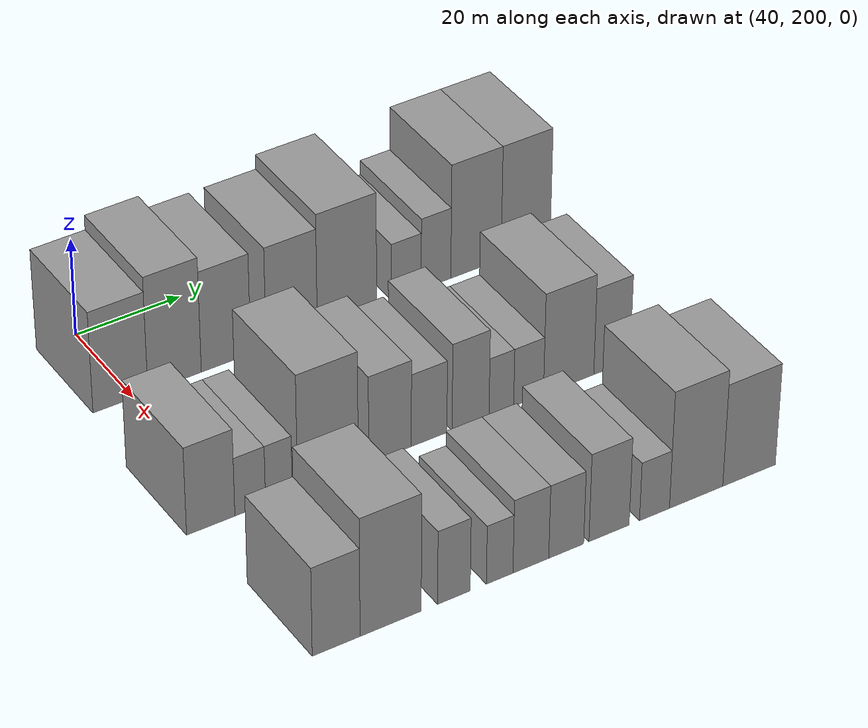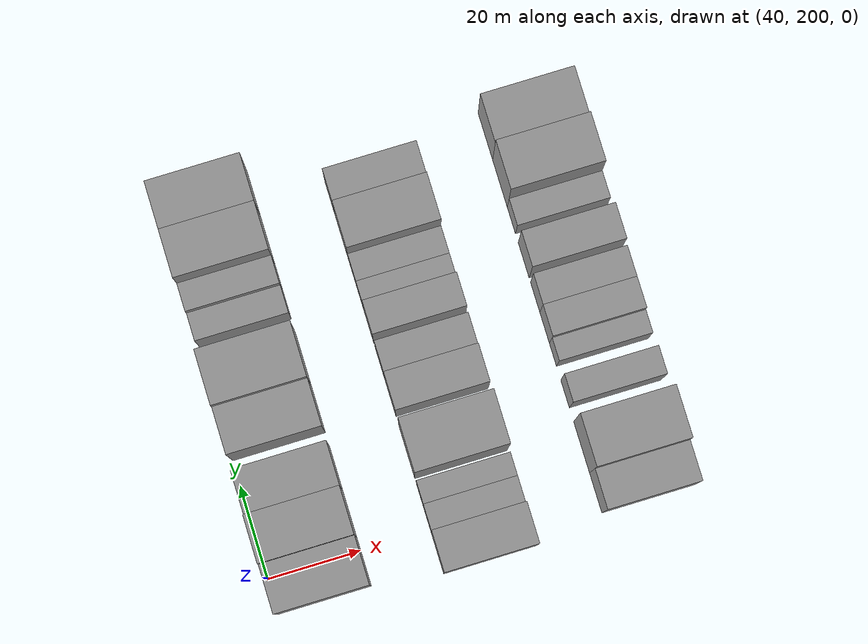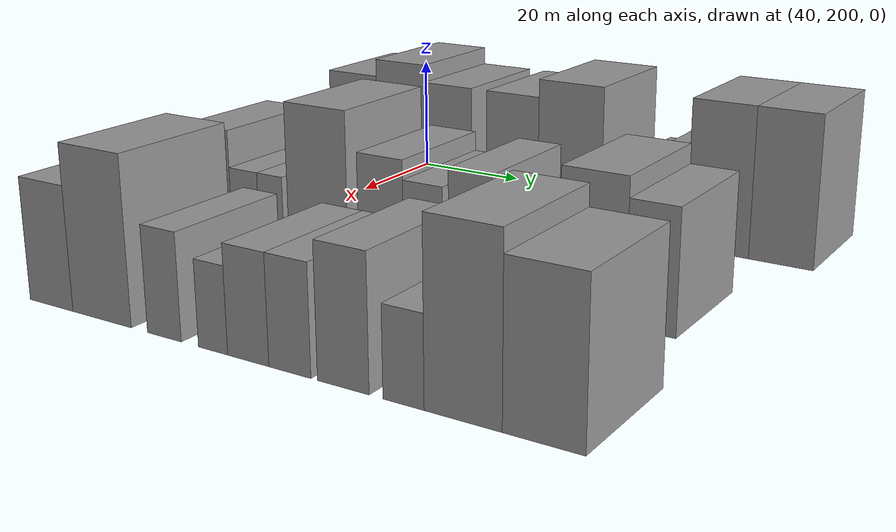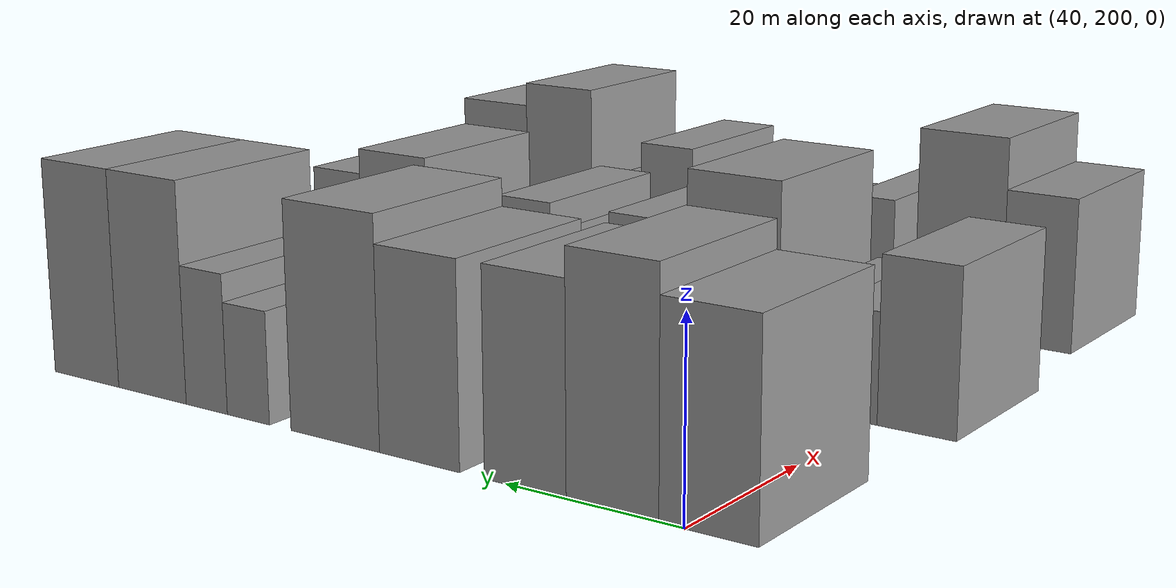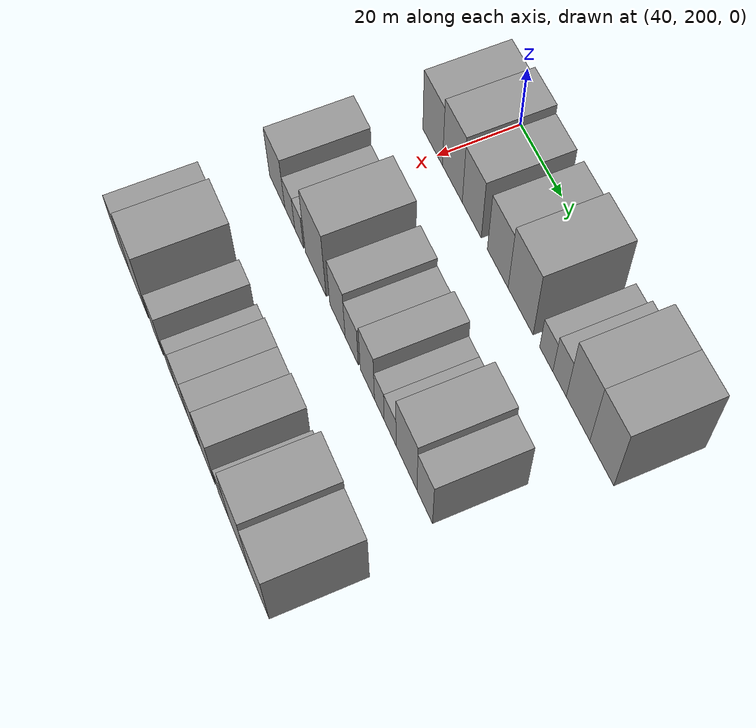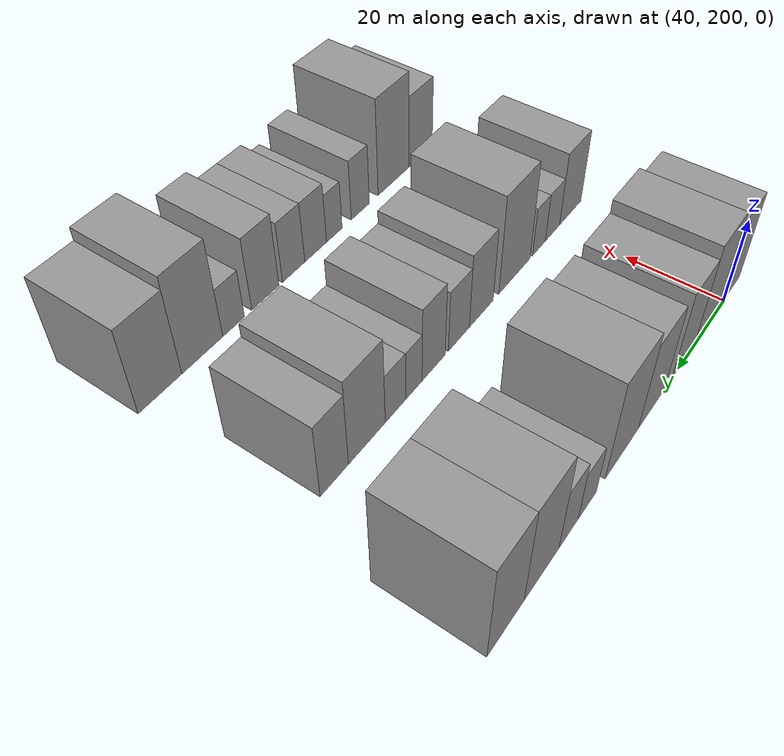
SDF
<sdf version="1.6">
 <world name="default">
  <model name="building_60">
   <static>1</static>
   <pose>50.0000 197.5814 0 0.000000 0.000000 0.000000</pose>
   <link name="link">
    <pose>0 0 10.50 0 0 0</pose>
    <collision name="collision"><geometry><box><size>20.0000 10.3683 21.0000</size></box></geometry></collision>
    <visual name="visual">
     <cast_shadows>0</cast_shadows>
     <geometry><box><size>20.0000 10.3683 21.0000</size></box></geometry>
     <material>
      <script>
       <uri>model://grey_wall/materials/scripts</uri>
       <uri>model://grey_wall/materials/textures</uri>
       <name>vrc/grey_wall</name>
      </script>
     </material>
    </visual>
   </link>
  </model>
  <model name="building_61">
   <static>1</static>
   <pose>50.0000 207.8681 0 0.000000 0.000000 0.000000</pose>
   <link name="link">
    <pose>0 0 12.00 0 0 0</pose>
    <collision name="collision"><geometry><box><size>20.0000 10.2053 24.0000</size></box></geometry></collision>
    <visual name="visual">
     <cast_shadows>0</cast_shadows>
     <geometry><box><size>20.0000 10.2053 24.0000</size></box></geometry>
     <material>
      <script>
       <uri>model://grey_wall/materials/scripts</uri>
       <uri>model://grey_wall/materials/textures</uri>
       <name>vrc/grey_wall</name>
      </script>
     </material>
    </visual>
   </link>
  </model>
  <model name="building_62">
   <static>1</static>
   <pose>50.0000 217.7414 0 0.000000 0.000000 0.000000</pose>
   <link name="link">
    <pose>0 0 10.50 0 0 0</pose>
    <collision name="collision"><geometry><box><size>20.0000 9.5413 21.0000</size></box></geometry></collision>
    <visual name="visual">
     <cast_shadows>0</cast_shadows>
     <geometry><box><size>20.0000 9.5413 21.0000</size></box></geometry>
     <material>
      <script>
       <uri>model://grey_wall/materials/scripts</uri>
       <uri>model://grey_wall/materials/textures</uri>
       <name>vrc/grey_wall</name>
      </script>
     </material>
    </visual>
   </link>
  </model>
  <model name="building_63">
   <static>1</static>
   <pose>50.0000 230.5318 0 0.000000 0.000000 0.000000</pose>
   <link name="link">
    <pose>0 0 10.50 0 0 0</pose>
    <collision name="collision"><geometry><box><size>20.0000 10.0395 21.0000</size></box></geometry></collision>
    <visual name="visual">
     <cast_shadows>0</cast_shadows>
     <geometry><box><size>20.0000 10.0395 21.0000</size></box></geometry>
     <material>
      <script>
       <uri>model://grey_wall/materials/scripts</uri>
       <uri>model://grey_wall/materials/textures</uri>
       <name>vrc/grey_wall</name>
      </script>
     </material>
    </visual>
   </link>
  </model>
  <model name="building_64">
   <static>1</static>
   <pose>50.0000 241.4395 0 0.000000 0.000000 0.000000</pose>
   <link name="link">
    <pose>0 0 12.00 0 0 0</pose>
    <collision name="collision"><geometry><box><size>20.0000 11.7759 24.0000</size></box></geometry></collision>
    <visual name="visual">
     <cast_shadows>0</cast_shadows>
     <geometry><box><size>20.0000 11.7759 24.0000</size></box></geometry>
     <material>
      <script>
       <uri>model://grey_wall/materials/scripts</uri>
       <uri>model://grey_wall/materials/textures</uri>
       <name>vrc/grey_wall</name>
      </script>
     </material>
    </visual>
   </link>
  </model>
  <model name="building_65">
   <static>1</static>
   <pose>50.0000 253.3082 0 0.000000 0.000000 0.000000</pose>
   <link name="link">
    <pose>0 0 6.00 0 0 0</pose>
    <collision name="collision"><geometry><box><size>20.0000 5.9616 12.0000</size></box></geometry></collision>
    <visual name="visual">
     <cast_shadows>0</cast_shadows>
     <geometry><box><size>20.0000 5.9616 12.0000</size></box></geometry>
     <material>
      <script>
       <uri>model://grey_wall/materials/scripts</uri>
       <uri>model://grey_wall/materials/textures</uri>
       <name>vrc/grey_wall</name>
      </script>
     </material>
    </visual>
   </link>
  </model>
  <model name="building_66">
   <static>1</static>
   <pose>50.0000 259.2945 0 0.000000 0.000000 0.000000</pose>
   <link name="link">
    <pose>0 0 7.50 0 0 0</pose>
    <collision name="collision"><geometry><box><size>20.0000 6.0109 15.0000</size></box></geometry></collision>
    <visual name="visual">
     <cast_shadows>0</cast_shadows>
     <geometry><box><size>20.0000 6.0109 15.0000</size></box></geometry>
     <material>
      <script>
       <uri>model://grey_wall/materials/scripts</uri>
       <uri>model://grey_wall/materials/textures</uri>
       <name>vrc/grey_wall</name>
      </script>
     </material>
    </visual>
   </link>
  </model>
  <model name="building_67">
   <static>1</static>
   <pose>50.0000 267.4410 0 0.000000 0.000000 0.000000</pose>
   <link name="link">
    <pose>0 0 12.00 0 0 0</pose>
    <collision name="collision"><geometry><box><size>20.0000 10.2821 24.0000</size></box></geometry></collision>
    <visual name="visual">
     <cast_shadows>0</cast_shadows>
     <geometry><box><size>20.0000 10.2821 24.0000</size></box></geometry>
     <material>
      <script>
       <uri>model://grey_wall/materials/scripts</uri>
       <uri>model://grey_wall/materials/textures</uri>
       <name>vrc/grey_wall</name>
      </script>
     </material>
    </visual>
   </link>
  </model>
  <model name="building_68">
   <static>1</static>
   <pose>50.0000 277.6601 0 0.000000 0.000000 0.000000</pose>
   <link name="link">
    <pose>0 0 12.00 0 0 0</pose>
    <collision name="collision"><geometry><box><size>20.0000 10.1560 24.0000</size></box></geometry></collision>
    <visual name="visual">
     <cast_shadows>0</cast_shadows>
     <geometry><box><size>20.0000 10.1560 24.0000</size></box></geometry>
     <material>
      <script>
       <uri>model://grey_wall/materials/scripts</uri>
       <uri>model://grey_wall/materials/textures</uri>
       <name>vrc/grey_wall</name>
      </script>
     </material>
    </visual>
   </link>
  </model>
  <model name="building_142">
   <static>1</static>
   <pose>85.0000 194.8877 0 0.000000 0.000000 0.000000</pose>
   <link name="link">
    <pose>0 0 9.00 0 0 0</pose>
    <collision name="collision"><geometry><box><size>20.0000 8.8818 18.0000</size></box></geometry></collision>
    <visual name="visual">
     <cast_shadows>0</cast_shadows>
     <geometry><box><size>20.0000 8.8818 18.0000</size></box></geometry>
     <material>
      <script>
       <uri>model://grey_wall/materials/scripts</uri>
       <uri>model://grey_wall/materials/textures</uri>
       <name>vrc/grey_wall</name>
      </script>
     </material>
    </visual>
   </link>
  </model>
  <model name="building_143">
   <static>1</static>
   <pose>85.0000 202.1746 0 0.000000 0.000000 0.000000</pose>
   <link name="link">
    <pose>0 0 6.00 0 0 0</pose>
    <collision name="collision"><geometry><box><size>20.0000 5.6919 12.0000</size></box></geometry></collision>
    <visual name="visual">
     <cast_shadows>0</cast_shadows>
     <geometry><box><size>20.0000 5.6919 12.0000</size></box></geometry>
     <material>
      <script>
       <uri>model://grey_wall/materials/scripts</uri>
       <uri>model://grey_wall/materials/textures</uri>
       <name>vrc/grey_wall</name>
      </script>
     </material>
    </visual>
   </link>
  </model>
  <model name="building_144">
   <static>1</static>
   <pose>85.0000 207.5154 0 0.000000 0.000000 0.000000</pose>
   <link name="link">
    <pose>0 0 6.00 0 0 0</pose>
    <collision name="collision"><geometry><box><size>20.0000 4.9896 12.0000</size></box></geometry></collision>
    <visual name="visual">
     <cast_shadows>0</cast_shadows>
     <geometry><box><size>20.0000 4.9896 12.0000</size></box></geometry>
     <material>
      <script>
       <uri>model://grey_wall/materials/scripts</uri>
       <uri>model://grey_wall/materials/textures</uri>
       <name>vrc/grey_wall</name>
      </script>
     </material>
    </visual>
   </link>
  </model>
  <model name="building_145">
   <static>1</static>
   <pose>85.0000 216.7356 0 0.000000 0.000000 0.000000</pose>
   <link name="link">
    <pose>0 0 12.00 0 0 0</pose>
    <collision name="collision"><geometry><box><size>20.0000 11.4508 24.0000</size></box></geometry></collision>
    <visual name="visual">
     <cast_shadows>0</cast_shadows>
     <geometry><box><size>20.0000 11.4508 24.0000</size></box></geometry>
     <material>
      <script>
       <uri>model://grey_wall/materials/scripts</uri>
       <uri>model://grey_wall/materials/textures</uri>
       <name>vrc/grey_wall</name>
      </script>
     </material>
    </visual>
   </link>
  </model>
  <model name="building_146">
   <static>1</static>
   <pose>85.0000 228.5396 0 0.000000 0.000000 0.000000</pose>
   <link name="link">
    <pose>0 0 9.00 0 0 0</pose>
    <collision name="collision"><geometry><box><size>20.0000 8.1572 18.0000</size></box></geometry></collision>
    <visual name="visual">
     <cast_shadows>0</cast_shadows>
     <geometry><box><size>20.0000 8.1572 18.0000</size></box></geometry>
     <material>
      <script>
       <uri>model://grey_wall/materials/scripts</uri>
       <uri>model://grey_wall/materials/textures</uri>
       <name>vrc/grey_wall</name>
      </script>
     </material>
    </visual>
   </link>
  </model>
  <model name="building_147">
   <static>1</static>
   <pose>85.0000 236.0549 0 0.000000 0.000000 0.000000</pose>
   <link name="link">
    <pose>0 0 7.50 0 0 0</pose>
    <collision name="collision"><geometry><box><size>20.0000 6.8735 15.0000</size></box></geometry></collision>
    <visual name="visual">
     <cast_shadows>0</cast_shadows>
     <geometry><box><size>20.0000 6.8735 15.0000</size></box></geometry>
     <material>
      <script>
       <uri>model://grey_wall/materials/scripts</uri>
       <uri>model://grey_wall/materials/textures</uri>
       <name>vrc/grey_wall</name>
      </script>
     </material>
    </visual>
   </link>
  </model>
  <model name="building_148">
   <static>1</static>
   <pose>85.0000 244.0991 0 0.000000 0.000000 0.000000</pose>
   <link name="link">
    <pose>0 0 9.00 0 0 0</pose>
    <collision name="collision"><geometry><box><size>20.0000 7.2148 18.0000</size></box></geometry></collision>
    <visual name="visual">
     <cast_shadows>0</cast_shadows>
     <geometry><box><size>20.0000 7.2148 18.0000</size></box></geometry>
     <material>
      <script>
       <uri>model://grey_wall/materials/scripts</uri>
       <uri>model://grey_wall/materials/textures</uri>
       <name>vrc/grey_wall</name>
      </script>
     </material>
    </visual>
   </link>
  </model>
  <model name="building_149">
   <static>1</static>
   <pose>85.0000 250.1289 0 0.000000 0.000000 0.000000</pose>
   <link name="link">
    <pose>0 0 6.00 0 0 0</pose>
    <collision name="collision"><geometry><box><size>20.0000 4.8449 12.0000</size></box></geometry></collision>
    <visual name="visual">
     <cast_shadows>0</cast_shadows>
     <geometry><box><size>20.0000 4.8449 12.0000</size></box></geometry>
     <material>
      <script>
       <uri>model://grey_wall/materials/scripts</uri>
       <uri>model://grey_wall/materials/textures</uri>
       <name>vrc/grey_wall</name>
      </script>
     </material>
    </visual>
   </link>
  </model>
  <model name="building_150">
   <static>1</static>
   <pose>85.0000 255.5011 0 0.000000 0.000000 0.000000</pose>
   <link name="link">
    <pose>0 0 6.00 0 0 0</pose>
    <collision name="collision"><geometry><box><size>20.0000 5.8996 12.0000</size></box></geometry></collision>
    <visual name="visual">
     <cast_shadows>0</cast_shadows>
     <geometry><box><size>20.0000 5.8996 12.0000</size></box></geometry>
     <material>
      <script>
       <uri>model://grey_wall/materials/scripts</uri>
       <uri>model://grey_wall/materials/textures</uri>
       <name>vrc/grey_wall</name>
      </script>
     </material>
    </visual>
   </link>
  </model>
  <model name="building_151">
   <static>1</static>
   <pose>85.0000 263.4760 0 0.000000 0.000000 0.000000</pose>
   <link name="link">
    <pose>0 0 10.50 0 0 0</pose>
    <collision name="collision"><geometry><box><size>20.0000 10.0502 21.0000</size></box></geometry></collision>
    <visual name="visual">
     <cast_shadows>0</cast_shadows>
     <geometry><box><size>20.0000 10.0502 21.0000</size></box></geometry>
     <material>
      <script>
       <uri>model://grey_wall/materials/scripts</uri>
       <uri>model://grey_wall/materials/textures</uri>
       <name>vrc/grey_wall</name>
      </script>
     </material>
    </visual>
   </link>
  </model>
  <model name="building_152">
   <static>1</static>
   <pose>85.0000 272.1502 0 0.000000 0.000000 0.000000</pose>
   <link name="link">
    <pose>0 0 9.00 0 0 0</pose>
    <collision name="collision"><geometry><box><size>20.0000 7.2982 18.0000</size></box></geometry></collision>
    <visual name="visual">
     <cast_shadows>0</cast_shadows>
     <geometry><box><size>20.0000 7.2982 18.0000</size></box></geometry>
     <material>
      <script>
       <uri>model://grey_wall/materials/scripts</uri>
       <uri>model://grey_wall/materials/textures</uri>
       <name>vrc/grey_wall</name>
      </script>
     </material>
    </visual>
   </link>
  </model>
  <model name="building_223">
   <static>1</static>
   <pose>120.0000 197.2749 0 0.000000 0.000000 0.000000</pose>
   <link name="link">
    <pose>0 0 9.00 0 0 0</pose>
    <collision name="collision"><geometry><box><size>20.0000 8.6225 18.0000</size></box></geometry></collision>
    <visual name="visual">
     <cast_shadows>0</cast_shadows>
     <geometry><box><size>20.0000 8.6225 18.0000</size></box></geometry>
     <material>
      <script>
       <uri>model://grey_wall/materials/scripts</uri>
       <uri>model://grey_wall/materials/textures</uri>
       <name>vrc/grey_wall</name>
      </script>
     </material>
    </visual>
   </link>
  </model>
  <model name="building_224">
   <static>1</static>
   <pose>120.0000 207.1720 0 0.000000 0.000000 0.000000</pose>
   <link name="link">
    <pose>0 0 12.00 0 0 0</pose>
    <collision name="collision"><geometry><box><size>20.0000 11.1717 24.0000</size></box></geometry></collision>
    <visual name="visual">
     <cast_shadows>0</cast_shadows>
     <geometry><box><size>20.0000 11.1717 24.0000</size></box></geometry>
     <material>
      <script>
       <uri>model://grey_wall/materials/scripts</uri>
       <uri>model://grey_wall/materials/textures</uri>
       <name>vrc/grey_wall</name>
      </script>
     </material>
    </visual>
   </link>
  </model>
  <model name="building_225">
   <static>1</static>
   <pose>120.0000 218.7835 0 0.000000 0.000000 0.000000</pose>
   <link name="link">
    <pose>0 0 7.50 0 0 0</pose>
    <collision name="collision"><geometry><box><size>20.0000 6.0513 15.0000</size></box></geometry></collision>
    <visual name="visual">
     <cast_shadows>0</cast_shadows>
     <geometry><box><size>20.0000 6.0513 15.0000</size></box></geometry>
     <material>
      <script>
       <uri>model://grey_wall/materials/scripts</uri>
       <uri>model://grey_wall/materials/textures</uri>
       <name>vrc/grey_wall</name>
      </script>
     </material>
    </visual>
   </link>
  </model>
  <model name="building_226">
   <static>1</static>
   <pose>120.0000 227.2994 0 0.000000 0.000000 0.000000</pose>
   <link name="link">
    <pose>0 0 6.00 0 0 0</pose>
    <collision name="collision"><geometry><box><size>20.0000 4.9806 12.0000</size></box></geometry></collision>
    <visual name="visual">
     <cast_shadows>0</cast_shadows>
     <geometry><box><size>20.0000 4.9806 12.0000</size></box></geometry>
     <material>
      <script>
       <uri>model://grey_wall/materials/scripts</uri>
       <uri>model://grey_wall/materials/textures</uri>
       <name>vrc/grey_wall</name>
      </script>
     </material>
    </visual>
   </link>
  </model>
  <model name="building_227">
   <static>1</static>
   <pose>120.0000 233.1699 0 0.000000 0.000000 0.000000</pose>
   <link name="link">
    <pose>0 0 7.50 0 0 0</pose>
    <collision name="collision"><geometry><box><size>20.0000 6.7605 15.0000</size></box></geometry></collision>
    <visual name="visual">
     <cast_shadows>0</cast_shadows>
     <geometry><box><size>20.0000 6.7605 15.0000</size></box></geometry>
     <material>
      <script>
       <uri>model://grey_wall/materials/scripts</uri>
       <uri>model://grey_wall/materials/textures</uri>
       <name>vrc/grey_wall</name>
      </script>
     </material>
    </visual>
   </link>
  </model>
  <model name="building_228">
   <static>1</static>
   <pose>120.0000 239.8699 0 0.000000 0.000000 0.000000</pose>
   <link name="link">
    <pose>0 0 7.50 0 0 0</pose>
    <collision name="collision"><geometry><box><size>20.0000 6.6394 15.0000</size></box></geometry></collision>
    <visual name="visual">
     <cast_shadows>0</cast_shadows>
     <geometry><box><size>20.0000 6.6394 15.0000</size></box></geometry>
     <material>
      <script>
       <uri>model://grey_wall/materials/scripts</uri>
       <uri>model://grey_wall/materials/textures</uri>
       <name>vrc/grey_wall</name>
      </script>
     </material>
    </visual>
   </link>
  </model>
  <model name="building_229">
   <static>1</static>
   <pose>120.0000 248.0553 0 0.000000 0.000000 0.000000</pose>
   <link name="link">
    <pose>0 0 9.00 0 0 0</pose>
    <collision name="collision"><geometry><box><size>20.0000 7.7314 18.0000</size></box></geometry></collision>
    <visual name="visual">
     <cast_shadows>0</cast_shadows>
     <geometry><box><size>20.0000 7.7314 18.0000</size></box></geometry>
     <material>
      <script>
       <uri>model://grey_wall/materials/scripts</uri>
       <uri>model://grey_wall/materials/textures</uri>
       <name>vrc/grey_wall</name>
      </script>
     </material>
    </visual>
   </link>
  </model>
  <model name="building_230">
   <static>1</static>
   <pose>120.0000 256.8327 0 0.000000 0.000000 0.000000</pose>
   <link name="link">
    <pose>0 0 6.00 0 0 0</pose>
    <collision name="collision"><geometry><box><size>20.0000 5.8233 12.0000</size></box></geometry></collision>
    <visual name="visual">
     <cast_shadows>0</cast_shadows>
     <geometry><box><size>20.0000 5.8233 12.0000</size></box></geometry>
     <material>
      <script>
       <uri>model://grey_wall/materials/scripts</uri>
       <uri>model://grey_wall/materials/textures</uri>
       <name>vrc/grey_wall</name>
      </script>
     </material>
    </visual>
   </link>
  </model>
  <model name="building_231">
   <static>1</static>
   <pose>120.0000 264.9719 0 0.000000 0.000000 0.000000</pose>
   <link name="link">
    <pose>0 0 12.00 0 0 0</pose>
    <collision name="collision"><geometry><box><size>20.0000 10.4552 24.0000</size></box></geometry></collision>
    <visual name="visual">
     <cast_shadows>0</cast_shadows>
     <geometry><box><size>20.0000 10.4552 24.0000</size></box></geometry>
     <material>
      <script>
       <uri>model://grey_wall/materials/scripts</uri>
       <uri>model://grey_wall/materials/textures</uri>
       <name>vrc/grey_wall</name>
      </script>
     </material>
    </visual>
   </link>
  </model>
  <model name="building_232">
   <static>1</static>
   <pose>120.0000 275.4180 0 0.000000 0.000000 0.000000</pose>
   <link name="link">
    <pose>0 0 10.50 0 0 0</pose>
    <collision name="collision"><geometry><box><size>20.0000 10.4370 21.0000</size></box></geometry></collision>
    <visual name="visual">
     <cast_shadows>0</cast_shadows>
     <geometry><box><size>20.0000 10.4370 21.0000</size></box></geometry>
     <material>
      <script>
       <uri>model://grey_wall/materials/scripts</uri>
       <uri>model://grey_wall/materials/textures</uri>
       <name>vrc/grey_wall</name>
      </script>
     </material>
    </visual>
   </link>
  </model>
 </world>
</sdf>
